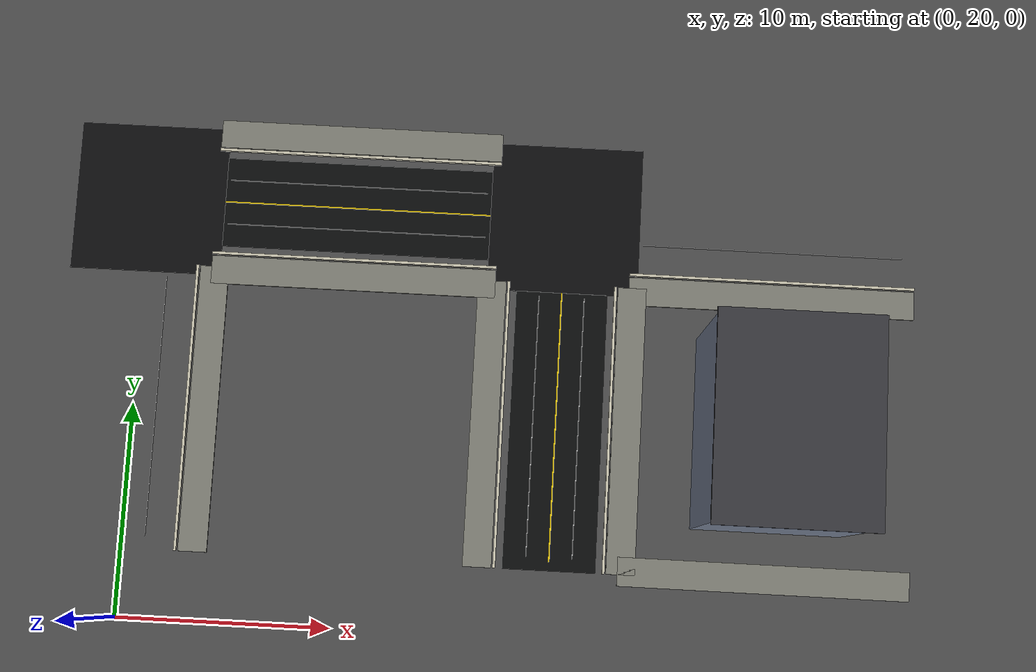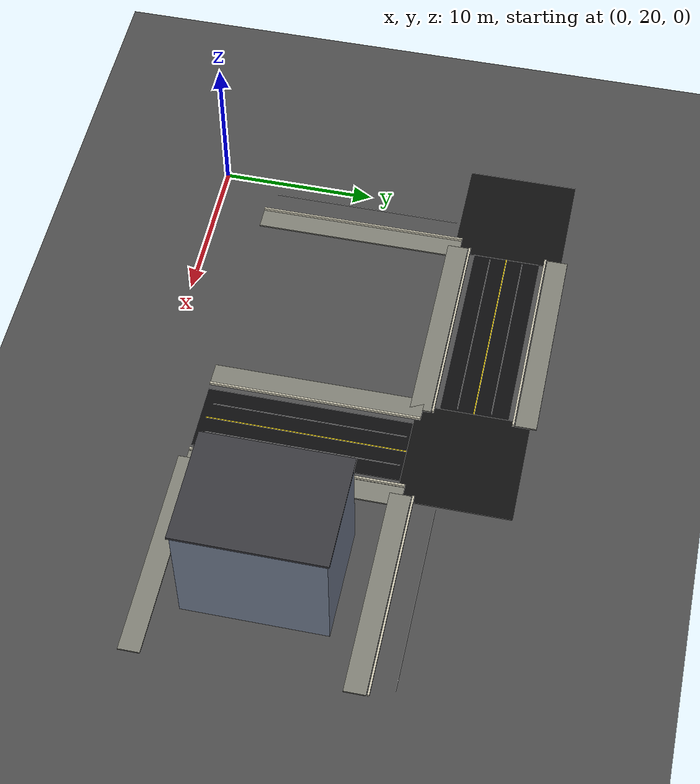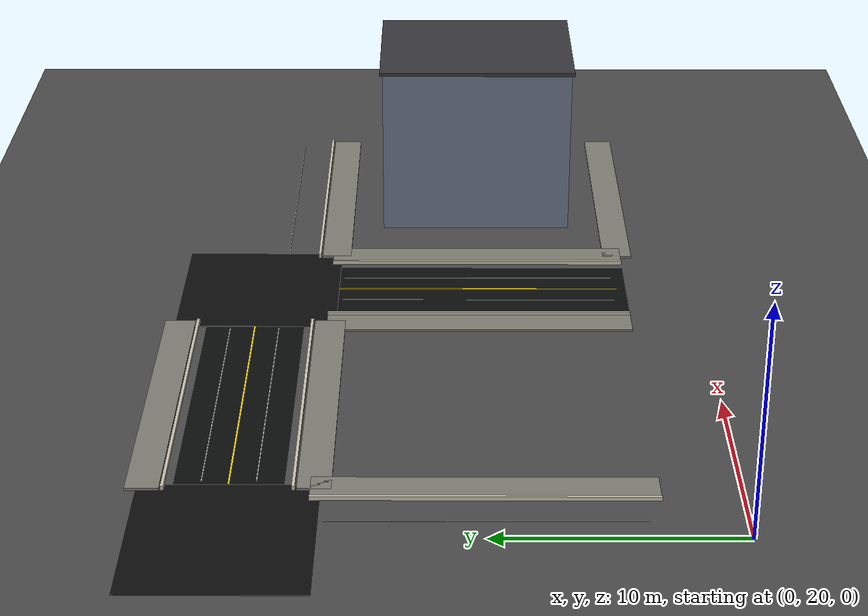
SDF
<sdf version="1.9">
 <world name="smart_city_world">
  <model name="ground">
   <static>true</static>
   <link name="link">
    <collision name="collision"><geometry><box><size>145 145 0.05</size></box></geometry></collision>
    <visual name="visual">
     <geometry><box><size>145 145 0.05</size></box></geometry>
     <material><ambient>0.30 0.30 0.30 1</ambient><diffuse>0.30 0.30 0.30 1</diffuse></material>
    </visual>
   </link>
  </model>
  <model name="road_e3">
   <static>true</static>
   <pose>10.000 40.000 0.018 0 0 0.000000</pose>
   <link name="link">
    <collision name="collision"><geometry><box><size>13.600 4.350 0.030</size></box></geometry></collision>
    <visual name="visual">
     <geometry><box><size>13.600 4.350 0.030</size></box></geometry>
     <material><ambient>0.045 0.047 0.05 1</ambient><diffuse>0.045 0.047 0.05 1</diffuse></material>
    </visual>
   </link>
  </model>
  <model name="center_line_e3">
   <static>true</static>
   <pose>10.000 40.000 0.052 0 0 0.000000</pose>
   <link name="link">
    <visual name="visual">
     <geometry><box><size>12.800 0.070 0.010</size></box></geometry>
     <material><ambient>1 0.86 0.05 1</ambient><diffuse>1 0.86 0.05 1</diffuse></material>
    </visual>
   </link>
  </model>
  <model name="sidewalk_e3_L">
   <static>true</static>
   <pose>10.000 43.350 0.075 0 0 0.000000</pose>
   <link name="link">
    <visual name="visual">
     <geometry><box><size>13.600 1.350 0.100</size></box></geometry>
     <material><ambient>0.5 0.5 0.46 1</ambient><diffuse>0.5 0.5 0.46 1</diffuse></material>
    </visual>
   </link>
  </model>
  <model name="curb_e3_L">
   <static>true</static>
   <pose>10.000 42.550 0.130 0 0 0.000000</pose>
   <link name="link">
    <visual name="visual">
     <geometry><box><size>13.600 0.120 0.180</size></box></geometry>
     <material><ambient>0.8 0.78 0.7 1</ambient><diffuse>0.8 0.78 0.7 1</diffuse></material>
    </visual>
   </link>
  </model>
  <model name="edge_line_e3_L">
   <static>true</static>
   <pose>10.000 41.080 0.054 0 0 0.000000</pose>
   <link name="link">
    <visual name="visual">
     <geometry><box><size>12.400 0.035 0.010</size></box></geometry>
     <material><ambient>0.85 0.85 0.85 1</ambient><diffuse>0.85 0.85 0.85 1</diffuse></material>
    </visual>
   </link>
  </model>
  <model name="sidewalk_e3_R">
   <static>true</static>
   <pose>10.000 36.650 0.075 0 0 0.000000</pose>
   <link name="link">
    <visual name="visual">
     <geometry><box><size>13.600 1.350 0.100</size></box></geometry>
     <material><ambient>0.5 0.5 0.46 1</ambient><diffuse>0.5 0.5 0.46 1</diffuse></material>
    </visual>
   </link>
  </model>
  <model name="curb_e3_R">
   <static>true</static>
   <pose>10.000 37.450 0.130 0 0 0.000000</pose>
   <link name="link">
    <visual name="visual">
     <geometry><box><size>13.600 0.120 0.180</size></box></geometry>
     <material><ambient>0.8 0.78 0.7 1</ambient><diffuse>0.8 0.78 0.7 1</diffuse></material>
    </visual>
   </link>
  </model>
  <model name="edge_line_e3_R">
   <static>true</static>
   <pose>10.000 38.920 0.054 0 0 0.000000</pose>
   <link name="link">
    <visual name="visual">
     <geometry><box><size>12.400 0.035 0.010</size></box></geometry>
     <material><ambient>0.85 0.85 0.85 1</ambient><diffuse>0.85 0.85 0.85 1</diffuse></material>
    </visual>
   </link>
  </model>
  <model name="sidewalk_e4_R">
   <static>true</static>
   <pose>30.000 36.650 0.075 0 0 0.000000</pose>
   <link name="link">
    <visual name="visual">
     <geometry><box><size>13.600 1.350 0.100</size></box></geometry>
     <material><ambient>0.5 0.5 0.46 1</ambient><diffuse>0.5 0.5 0.46 1</diffuse></material>
    </visual>
   </link>
  </model>
  <model name="curb_e4_R">
   <static>true</static>
   <pose>30.000 37.450 0.130 0 0 0.000000</pose>
   <link name="link">
    <visual name="visual">
     <geometry><box><size>13.600 0.120 0.180</size></box></geometry>
     <material><ambient>0.8 0.78 0.7 1</ambient><diffuse>0.8 0.78 0.7 1</diffuse></material>
    </visual>
   </link>
  </model>
  <model name="edge_line_e4_R">
   <static>true</static>
   <pose>30.000 38.920 0.054 0 0 0.000000</pose>
   <link name="link">
    <visual name="visual">
     <geometry><box><size>12.400 0.035 0.010</size></box></geometry>
     <material><ambient>0.85 0.85 0.85 1</ambient><diffuse>0.85 0.85 0.85 1</diffuse></material>
    </visual>
   </link>
  </model>
  <model name="sidewalk_e8_L">
   <static>true</static>
   <pose>30.000 23.350 0.075 0 0 0.000000</pose>
   <link name="link">
    <visual name="visual">
     <geometry><box><size>13.600 1.350 0.100</size></box></geometry>
     <material><ambient>0.5 0.5 0.46 1</ambient><diffuse>0.5 0.5 0.46 1</diffuse></material>
    </visual>
   </link>
  </model>
  <model name="sidewalk_e29_L">
   <static>true</static>
   <pose>3.350 30.000 0.075 0 0 -1.570796</pose>
   <link name="link">
    <visual name="visual">
     <geometry><box><size>13.600 1.350 0.100</size></box></geometry>
     <material><ambient>0.5 0.5 0.46 1</ambient><diffuse>0.5 0.5 0.46 1</diffuse></material>
    </visual>
   </link>
  </model>
  <model name="curb_e29_L">
   <static>true</static>
   <pose>2.550 30.000 0.130 0 0 -1.570796</pose>
   <link name="link">
    <visual name="visual">
     <geometry><box><size>13.600 0.120 0.180</size></box></geometry>
     <material><ambient>0.8 0.78 0.7 1</ambient><diffuse>0.8 0.78 0.7 1</diffuse></material>
    </visual>
   </link>
  </model>
  <model name="edge_line_e29_L">
   <static>true</static>
   <pose>1.080 30.000 0.054 0 0 -1.570796</pose>
   <link name="link">
    <visual name="visual">
     <geometry><box><size>12.400 0.035 0.010</size></box></geometry>
     <material><ambient>0.85 0.85 0.85 1</ambient><diffuse>0.85 0.85 0.85 1</diffuse></material>
    </visual>
   </link>
  </model>
  <model name="road_e33">
   <static>true</static>
   <pose>20.000 30.000 0.018 0 0 -1.570796</pose>
   <link name="link">
    <collision name="collision"><geometry><box><size>13.600 4.350 0.030</size></box></geometry></collision>
    <visual name="visual">
     <geometry><box><size>13.600 4.350 0.030</size></box></geometry>
     <material><ambient>0.045 0.047 0.05 1</ambient><diffuse>0.045 0.047 0.05 1</diffuse></material>
    </visual>
   </link>
  </model>
  <model name="center_line_e33">
   <static>true</static>
   <pose>20.000 30.000 0.052 0 0 -1.570796</pose>
   <link name="link">
    <visual name="visual">
     <geometry><box><size>12.800 0.070 0.010</size></box></geometry>
     <material><ambient>1 0.86 0.05 1</ambient><diffuse>1 0.86 0.05 1</diffuse></material>
    </visual>
   </link>
  </model>
  <model name="sidewalk_e33_L">
   <static>true</static>
   <pose>23.350 30.000 0.075 0 0 -1.570796</pose>
   <link name="link">
    <visual name="visual">
     <geometry><box><size>13.600 1.350 0.100</size></box></geometry>
     <material><ambient>0.5 0.5 0.46 1</ambient><diffuse>0.5 0.5 0.46 1</diffuse></material>
    </visual>
   </link>
  </model>
  <model name="curb_e33_L">
   <static>true</static>
   <pose>22.550 30.000 0.130 0 0 -1.570796</pose>
   <link name="link">
    <visual name="visual">
     <geometry><box><size>13.600 0.120 0.180</size></box></geometry>
     <material><ambient>0.8 0.78 0.7 1</ambient><diffuse>0.8 0.78 0.7 1</diffuse></material>
    </visual>
   </link>
  </model>
  <model name="edge_line_e33_L">
   <static>true</static>
   <pose>21.080 30.000 0.054 0 0 -1.570796</pose>
   <link name="link">
    <visual name="visual">
     <geometry><box><size>12.400 0.035 0.010</size></box></geometry>
     <material><ambient>0.85 0.85 0.85 1</ambient><diffuse>0.85 0.85 0.85 1</diffuse></material>
    </visual>
   </link>
  </model>
  <model name="sidewalk_e33_R">
   <static>true</static>
   <pose>16.650 30.000 0.075 0 0 -1.570796</pose>
   <link name="link">
    <visual name="visual">
     <geometry><box><size>13.600 1.350 0.100</size></box></geometry>
     <material><ambient>0.5 0.5 0.46 1</ambient><diffuse>0.5 0.5 0.46 1</diffuse></material>
    </visual>
   </link>
  </model>
  <model name="curb_e33_R">
   <static>true</static>
   <pose>17.450 30.000 0.130 0 0 -1.570796</pose>
   <link name="link">
    <visual name="visual">
     <geometry><box><size>13.600 0.120 0.180</size></box></geometry>
     <material><ambient>0.8 0.78 0.7 1</ambient><diffuse>0.8 0.78 0.7 1</diffuse></material>
    </visual>
   </link>
  </model>
  <model name="edge_line_e33_R">
   <static>true</static>
   <pose>18.920 30.000 0.054 0 0 -1.570796</pose>
   <link name="link">
    <visual name="visual">
     <geometry><box><size>12.400 0.035 0.010</size></box></geometry>
     <material><ambient>0.85 0.85 0.85 1</ambient><diffuse>0.85 0.85 0.85 1</diffuse></material>
    </visual>
   </link>
  </model>
  <model name="intersection_plate_n3">
   <static>true</static>
   <pose>0.000 40.000 0.025 0 0 0.000000</pose>
   <link name="link">
    <collision name="collision"><geometry><box><size>7.200 7.200 0.035</size></box></geometry></collision>
    <visual name="visual">
     <geometry><box><size>7.200 7.200 0.035</size></box></geometry>
     <material><ambient>0.055 0.055 0.058 1</ambient><diffuse>0.055 0.055 0.058 1</diffuse></material>
    </visual>
   </link>
  </model>
  <model name="intersection_plate_n4">
   <static>true</static>
   <pose>20.000 40.000 0.025 0 0 0.000000</pose>
   <link name="link">
    <collision name="collision"><geometry><box><size>7.200 7.200 0.035</size></box></geometry></collision>
    <visual name="visual">
     <geometry><box><size>7.200 7.200 0.035</size></box></geometry>
     <material><ambient>0.055 0.055 0.058 1</ambient><diffuse>0.055 0.055 0.058 1</diffuse></material>
    </visual>
   </link>
  </model>
  <model name="office_b">
   <static>true</static>
   <pose>30.000 30.000 4.000 0 0 0.000000</pose>
   <link name="link">
    <collision name="collision"><geometry><box><size>7.000 9.000 8.000</size></box></geometry></collision>
    <visual name="visual">
     <geometry><box><size>7.000 9.000 8.000</size></box></geometry>
     <material><ambient>0.44 0.48 0.56 1</ambient><diffuse>0.44 0.48 0.56 1</diffuse></material>
    </visual>
   </link>
  </model>
  <model name="office_b_roof">
   <static>true</static>
   <pose>30.000 30.000 8.080 0 0 0.000000</pose>
   <link name="link">
    <visual name="visual">
     <geometry><box><size>7.250 9.250 0.160</size></box></geometry>
     <material><ambient>0.22 0.22 0.24 1</ambient><diffuse>0.22 0.22 0.24 1</diffuse></material>
    </visual>
   </link>
  </model>
 </world>
</sdf>
